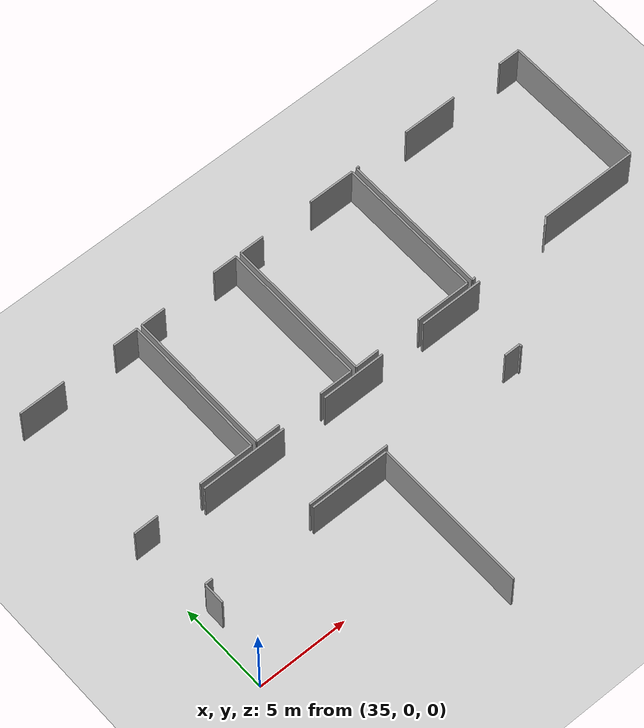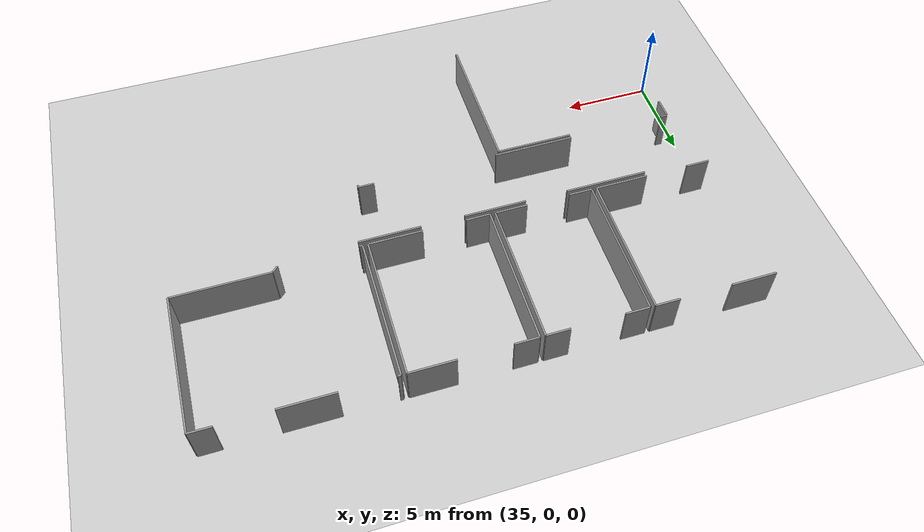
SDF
<sdf version="1.6">
 <world name="default">
  <model name="ground_plane">
   <static>1</static>
   <link name="link">
    <collision name="collision">
     <geometry><plane><normal>0 0 1</normal><size>100 100</size></plane></geometry>
     <surface><friction><ode><mu>100</mu><mu2>50</mu2></ode></friction></surface>
    </collision>
    <visual name="visual">
     <cast_shadows>0</cast_shadows>
     <geometry><plane><normal>0 0 1</normal><size>100 100</size></plane></geometry>
     <material>
      <script><uri>file://media/materials/scripts/gazebo.material</uri><name>Gazebo/Grey</name></script>
     </material>
    </visual>
   </link>
  </model>
  <model name="50041172">
   <static>1</static>
   <link name="Wall_153">
    <collision name="Wall_153_Collision">
     <geometry><box><size>4.39693880791 0.1 2.5</size></box></geometry>
     <pose>2.19846940396 0 1.25 0 0 0</pose>
    </collision>
    <visual name="Wall_153_Visual">
     <pose>2.19846940396 0 1.25 0 0 0</pose>
     <geometry><box><size>4.39693880791 0.1 2.5</size></box></geometry>
     <material>
      <script><uri>file://media/materials/scripts/gazebo.material</uri><name>Gazebo/Grey</name></script>
      <ambient>1 1 1 1</ambient>
     </material>
    </visual>
    <pose>107.543615636 -12.468578324 0 0 0 0.0</pose>
   </link>
   <link name="Wall_154">
    <collision name="Wall_154_Collision">
     <geometry><box><size>8.60347400845 0.1 2.5</size></box></geometry>
     <pose>4.30173700422 0 1.25 0 0 0</pose>
    </collision>
    <visual name="Wall_154_Visual">
     <pose>4.30173700422 0 1.25 0 0 0</pose>
     <geometry><box><size>8.60347400845 0.1 2.5</size></box></geometry>
     <material>
      <script><uri>file://media/materials/scripts/gazebo.material</uri><name>Gazebo/Grey</name></script>
      <ambient>1 1 1 1</ambient>
     </material>
    </visual>
    <pose>111.940554444 -12.468578324 0 0 0 -1.57079632679</pose>
   </link>
   <link name="Wall_269">
    <collision name="Wall_269_Collision">
     <geometry><box><size>2.56733669937 0.1 2.5</size></box></geometry>
     <pose>1.28366834969 0 1.25 0 0 0</pose>
    </collision>
    <visual name="Wall_269_Visual">
     <pose>1.28366834969 0 1.25 0 0 0</pose>
     <geometry><box><size>2.56733669937 0.1 2.5</size></box></geometry>
     <material>
      <script><uri>file://media/materials/scripts/gazebo.material</uri><name>Gazebo/Grey</name></script>
      <ambient>1 1 1 1</ambient>
     </material>
    </visual>
    <pose>100.6251945 -0.0269283287288 0 0 0 0.0</pose>
   </link>
   <link name="Wall_270">
    <collision name="Wall_270_Collision">
     <geometry><box><size>1.38820615414 0.1 2.5</size></box></geometry>
     <pose>0.69410307707 0 1.25 0 0 0</pose>
    </collision>
    <visual name="Wall_270_Visual">
     <pose>0.69410307707 0 1.25 0 0 0</pose>
     <geometry><box><size>1.38820615414 0.1 2.5</size></box></geometry>
     <material>
      <script><uri>file://media/materials/scripts/gazebo.material</uri><name>Gazebo/Grey</name></script>
      <ambient>1 1 1 1</ambient>
     </material>
    </visual>
    <pose>106.148042298 -0.0269283287288 0 0 0 0.0</pose>
   </link>
   <link name="Wall_271">
    <collision name="Wall_271_Collision">
     <geometry><box><size>8.18430662729 0.1 2.5</size></box></geometry>
     <pose>4.09215331365 0 1.25 0 0 0</pose>
    </collision>
    <visual name="Wall_271_Visual">
     <pose>4.09215331365 0 1.25 0 0 0</pose>
     <geometry><box><size>8.18430662729 0.1 2.5</size></box></geometry>
     <material>
      <script><uri>file://media/materials/scripts/gazebo.material</uri><name>Gazebo/Grey</name></script>
      <ambient>1 1 1 1</ambient>
     </material>
    </visual>
    <pose>107.536248452 -0.0269283287288 0 0 0 -1.57079632679</pose>
   </link>
   <link name="Wall_272">
    <collision name="Wall_272_Collision">
     <geometry><box><size>3.05420596361 0.1 2.5</size></box></geometry>
     <pose>1.5271029818 0 1.25 0 0 0</pose>
    </collision>
    <visual name="Wall_272_Visual">
     <pose>1.5271029818 0 1.25 0 0 0</pose>
     <geometry><box><size>3.05420596361 0.1 2.5</size></box></geometry>
     <material>
      <script><uri>file://media/materials/scripts/gazebo.material</uri><name>Gazebo/Grey</name></script>
      <ambient>1 1 1 1</ambient>
     </material>
    </visual>
    <pose>107.536248452 -8.21123495602 0 0 0 3.14159265359</pose>
   </link>
   <link name="Wall_273">
    <collision name="Wall_273_Collision">
     <geometry><box><size>1.36233677235 0.1 2.5</size></box></geometry>
     <pose>0.681168386177 0 1.25 0 0 0</pose>
    </collision>
    <visual name="Wall_273_Visual">
     <pose>0.681168386177 0 1.25 0 0 0</pose>
     <geometry><box><size>1.36233677235 0.1 2.5</size></box></geometry>
     <material>
      <script><uri>file://media/materials/scripts/gazebo.material</uri><name>Gazebo/Grey</name></script>
      <ambient>1 1 1 1</ambient>
     </material>
    </visual>
    <pose>101.987488489 -8.21123495602 0 0 0 -3.1336674116</pose>
   </link>
   <link name="Wall_274">
    <collision name="Wall_274_Collision">
     <geometry><box><size>8.19268997491 0.1 2.5</size></box></geometry>
     <pose>4.09634498746 0 1.25 0 0 0</pose>
    </collision>
    <visual name="Wall_274_Visual">
     <pose>4.09634498746 0 1.25 0 0 0</pose>
     <geometry><box><size>8.19268997491 0.1 2.5</size></box></geometry>
     <material>
      <script><uri>file://media/materials/scripts/gazebo.material</uri><name>Gazebo/Grey</name></script>
      <ambient>1 1 1 1</ambient>
     </material>
    </visual>
    <pose>107.824711822 -8.21555365025 0 0 0 1.57079632679</pose>
   </link>
   <link name="Wall_275">
    <collision name="Wall_275_Collision">
     <geometry><box><size>1.36305611127 0.1 2.5</size></box></geometry>
     <pose>0.681528055635 0 1.25 0 0 0</pose>
    </collision>
    <visual name="Wall_275_Visual">
     <pose>0.681528055635 0 1.25 0 0 0</pose>
     <geometry><box><size>1.36305611127 0.1 2.5</size></box></geometry>
     <material>
      <script><uri>file://media/materials/scripts/gazebo.material</uri><name>Gazebo/Grey</name></script>
      <ambient>1 1 1 1</ambient>
     </material>
    </visual>
    <pose>107.824711822 -0.0228636753358 0 0 0 0.0</pose>
   </link>
   <link name="Wall_276">
    <collision name="Wall_276_Collision">
     <geometry><box><size>1.36165888667 0.1 2.5</size></box></geometry>
     <pose>0.680829443333 0 1.25 0 0 0</pose>
    </collision>
    <visual name="Wall_276_Visual">
     <pose>0.680829443333 0 1.25 0 0 0</pose>
     <geometry><box><size>1.36165888667 0.1 2.5</size></box></geometry>
     <material>
      <script><uri>file://media/materials/scripts/gazebo.material</uri><name>Gazebo/Grey</name></script>
      <ambient>1 1 1 1</ambient>
     </material>
    </visual>
    <pose>112.169191197 -0.0228636753358 0 0 0 0.0</pose>
   </link>
   <link name="Wall_277">
    <collision name="Wall_277_Collision">
     <geometry><box><size>8.19586548538 0.1 2.5</size></box></geometry>
     <pose>4.09793274269 0 1.25 0 0 0</pose>
    </collision>
    <visual name="Wall_277_Visual">
     <pose>4.09793274269 0 1.25 0 0 0</pose>
     <geometry><box><size>8.19586548538 0.1 2.5</size></box></geometry>
     <material>
      <script><uri>file://media/materials/scripts/gazebo.material</uri><name>Gazebo/Grey</name></script>
      <ambient>1 1 1 1</ambient>
     </material>
    </visual>
    <pose>113.530850084 -0.0228636753358 0 0 0 -1.57079632679</pose>
   </link>
   <link name="Wall_278">
    <collision name="Wall_278_Collision">
     <geometry><box><size>1.8608491315 0.1 2.5</size></box></geometry>
     <pose>0.930424565749 0 1.25 0 0 0</pose>
    </collision>
    <visual name="Wall_278_Visual">
     <pose>0.930424565749 0 1.25 0 0 0</pose>
     <geometry><box><size>1.8608491315 0.1 2.5</size></box></geometry>
     <material>
      <script><uri>file://media/materials/scripts/gazebo.material</uri><name>Gazebo/Grey</name></script>
      <ambient>1 1 1 1</ambient>
     </material>
    </visual>
    <pose>113.530850084 -8.21872916071 0 0 0 3.14159265359</pose>
   </link>
   <link name="Wall_279">
    <collision name="Wall_279_Collision">
     <geometry><box><size>1.35048482327 0.1 2.5</size></box></geometry>
     <pose>0.675242411633 0 1.25 0 0 0</pose>
    </collision>
    <visual name="Wall_279_Visual">
     <pose>0.675242411633 0 1.25 0 0 0</pose>
     <geometry><box><size>1.35048482327 0.1 2.5</size></box></geometry>
     <material>
      <script><uri>file://media/materials/scripts/gazebo.material</uri><name>Gazebo/Grey</name></script>
      <ambient>1 1 1 1</ambient>
     </material>
    </visual>
    <pose>109.175192912 -8.21872916071 0 0 0 3.1392412659</pose>
   </link>
   <link name="Wall_280">
    <collision name="Wall_280_Collision">
     <geometry><box><size>8.20399479216 0.1 2.5</size></box></geometry>
     <pose>4.10199739608 0 1.25 0 0 0</pose>
    </collision>
    <visual name="Wall_280_Visual">
     <pose>4.10199739608 0 1.25 0 0 0</pose>
     <geometry><box><size>8.20399479216 0.1 2.5</size></box></geometry>
     <material>
      <script><uri>file://media/materials/scripts/gazebo.material</uri><name>Gazebo/Grey</name></script>
      <ambient>1 1 1 1</ambient>
     </material>
    </visual>
    <pose>113.83315868 -8.22304785494 0 0 0 1.57079632679</pose>
   </link>
   <link name="Wall_281">
    <collision name="Wall_281_Collision">
     <geometry><box><size>1.36292909085 0.1 2.5</size></box></geometry>
     <pose>0.681464545426 0 1.25 0 0 0</pose>
    </collision>
    <visual name="Wall_281_Visual">
     <pose>0.681464545426 0 1.25 0 0 0</pose>
     <geometry><box><size>1.36292909085 0.1 2.5</size></box></geometry>
     <material>
      <script><uri>file://media/materials/scripts/gazebo.material</uri><name>Gazebo/Grey</name></script>
      <ambient>1 1 1 1</ambient>
     </material>
    </visual>
    <pose>113.83315868 -0.0190530627798 0 0 0 0.0</pose>
   </link>
   <link name="Wall_282">
    <collision name="Wall_282_Collision">
     <geometry><box><size>2.58232510876 0.1 2.5</size></box></geometry>
     <pose>1.29116255438 0 1.25 0 0 0</pose>
    </collision>
    <visual name="Wall_282_Visual">
     <pose>1.29116255438 0 1.25 0 0 0</pose>
     <geometry><box><size>2.58232510876 0.1 2.5</size></box></geometry>
     <material>
      <script><uri>file://media/materials/scripts/gazebo.material</uri><name>Gazebo/Grey</name></script>
      <ambient>1 1 1 1</ambient>
     </material>
    </visual>
    <pose>118.15185291 -0.0190530627798 0 0 0 0.0</pose>
   </link>
   <link name="Wall_283">
    <collision name="Wall_283_Collision">
     <geometry><box><size>8.18938744403 0.1 2.5</size></box></geometry>
     <pose>4.09469372202 0 1.25 0 0 0</pose>
    </collision>
    <visual name="Wall_283_Visual">
     <pose>4.09469372202 0 1.25 0 0 0</pose>
     <geometry><box><size>8.18938744403 0.1 2.5</size></box></geometry>
     <material>
      <script><uri>file://media/materials/scripts/gazebo.material</uri><name>Gazebo/Grey</name></script>
      <ambient>1 1 1 1</ambient>
     </material>
    </visual>
    <pose>120.734178019 -0.0190530627798 0 0 0 -1.57079632679</pose>
   </link>
   <link name="Wall_284">
    <collision name="Wall_284_Collision">
     <geometry><box><size>3.05103045315 0.1 2.5</size></box></geometry>
     <pose>1.52551522657 0 1.25 0 0 0</pose>
    </collision>
    <visual name="Wall_284_Visual">
     <pose>1.52551522657 0 1.25 0 0 0</pose>
     <geometry><box><size>3.05103045315 0.1 2.5</size></box></geometry>
     <material>
      <script><uri>file://media/materials/scripts/gazebo.material</uri><name>Gazebo/Grey</name></script>
      <ambient>1 1 1 1</ambient>
     </material>
    </visual>
    <pose>120.734178019 -8.20844050681 0 0 0 3.14159265359</pose>
   </link>
   <link name="Wall_285">
    <collision name="Wall_285_Collision">
     <geometry><box><size>1.36681776089 0.1 2.5</size></box></geometry>
     <pose>0.683408880446 0 1.25 0 0 0</pose>
    </collision>
    <visual name="Wall_285_Visual">
     <pose>0.683408880446 0 1.25 0 0 0</pose>
     <geometry><box><size>1.36681776089 0.1 2.5</size></box></geometry>
     <material>
      <script><uri>file://media/materials/scripts/gazebo.material</uri><name>Gazebo/Grey</name></script>
      <ambient>1 1 1 1</ambient>
     </material>
    </visual>
    <pose>115.199898384 -8.20844050681 0 0 0 -3.13090532816</pose>
   </link>
   <link name="Wall_286">
    <collision name="Wall_286_Collision">
     <geometry><box><size>8.20894858849 0.1 2.5</size></box></geometry>
     <pose>4.10447429424 0 1.25 0 0 0</pose>
    </collision>
    <visual name="Wall_286_Visual">
     <pose>4.10447429424 0 1.25 0 0 0</pose>
     <geometry><box><size>8.20894858849 0.1 2.5</size></box></geometry>
     <material>
      <script><uri>file://media/materials/scripts/gazebo.material</uri><name>Gazebo/Grey</name></script>
      <ambient>1 1 1 1</ambient>
     </material>
    </visual>
    <pose>121.027595186 -8.22038042615 0 0 0 1.57079632679</pose>
   </link>
   <link name="Wall_287">
    <collision name="Wall_287_Collision">
     <geometry><box><size>0.166396748277 0.1 2.5</size></box></geometry>
     <pose>0.0831983741386 0 1.25 0 0 0</pose>
    </collision>
    <visual name="Wall_287_Visual">
     <pose>0.0831983741386 0 1.25 0 0 0</pose>
     <geometry><box><size>0.166396748277 0.1 2.5</size></box></geometry>
     <material>
      <script><uri>file://media/materials/scripts/gazebo.material</uri><name>Gazebo/Grey</name></script>
      <ambient>1 1 1 1</ambient>
     </material>
    </visual>
    <pose>121.027595186 -0.0114318376679 0 0 0 0.0</pose>
   </link>
   <link name="Wall_288">
    <collision name="Wall_288_Collision">
     <geometry><box><size>3.06627290337 0.1 2.5</size></box></geometry>
     <pose>1.53313645168 0 1.25 0 0 0</pose>
    </collision>
    <visual name="Wall_288_Visual">
     <pose>1.53313645168 0 1.25 0 0 0</pose>
     <geometry><box><size>3.06627290337 0.1 2.5</size></box></geometry>
     <material>
      <script><uri>file://media/materials/scripts/gazebo.material</uri><name>Gazebo/Grey</name></script>
      <ambient>1 1 1 1</ambient>
     </material>
    </visual>
    <pose>124.153567686 -0.0114318376679 0 0 0 0.0</pose>
   </link>
   <link name="Wall_289">
    <collision name="Wall_289_Collision">
     <geometry><box><size>1.2460703058 0.1 2.5</size></box></geometry>
     <pose>0.623035152901 0 1.25 0 0 0</pose>
    </collision>
    <visual name="Wall_289_Visual">
     <pose>0.623035152901 0 1.25 0 0 0</pose>
     <geometry><box><size>1.2460703058 0.1 2.5</size></box></geometry>
     <material>
      <script><uri>file://media/materials/scripts/gazebo.material</uri><name>Gazebo/Grey</name></script>
      <ambient>1 1 1 1</ambient>
     </material>
    </visual>
    <pose>130.175605729 -0.0114318376679 0 0 0 0.0</pose>
   </link>
   <link name="Wall_290">
    <collision name="Wall_290_Collision">
     <geometry><box><size>7.89660537931 0.1 2.5</size></box></geometry>
     <pose>3.94830268966 0 1.25 0 0 0</pose>
    </collision>
    <visual name="Wall_290_Visual">
     <pose>3.94830268966 0 1.25 0 0 0</pose>
     <geometry><box><size>7.89660537931 0.1 2.5</size></box></geometry>
     <material>
      <script><uri>file://media/materials/scripts/gazebo.material</uri><name>Gazebo/Grey</name></script>
      <ambient>1 1 1 1</ambient>
     </material>
    </visual>
    <pose>131.421676034 -0.0114318376679 0 0 0 -1.57079632679</pose>
   </link>
   <link name="Wall_291">
    <collision name="Wall_291_Collision">
     <geometry><box><size>5.45806738433 0.1 2.5</size></box></geometry>
     <pose>2.72903369217 0 1.25 0 0 0</pose>
    </collision>
    <visual name="Wall_291_Visual">
     <pose>2.72903369217 0 1.25 0 0 0</pose>
     <geometry><box><size>5.45806738433 0.1 2.5</size></box></geometry>
     <material>
      <script><uri>file://media/materials/scripts/gazebo.material</uri><name>Gazebo/Grey</name></script>
      <ambient>1 1 1 1</ambient>
     </material>
    </visual>
    <pose>131.421676034 -7.90803721698 0 0 0 3.14159265359</pose>
   </link>
   <link name="Wall_292">
    <collision name="Wall_292_Collision">
     <geometry><box><size>0.435285927372 0.1 2.5</size></box></geometry>
     <pose>0.217642963686 0 1.25 0 0 0</pose>
    </collision>
    <visual name="Wall_292_Visual">
     <pose>0.217642963686 0 1.25 0 0 0</pose>
     <geometry><box><size>0.435285927372 0.1 2.5</size></box></geometry>
     <material>
      <script><uri>file://media/materials/scripts/gazebo.material</uri><name>Gazebo/Grey</name></script>
      <ambient>1 1 1 1</ambient>
     </material>
    </visual>
    <pose>125.96360865 -7.90803721698 0 0 0 -2.37992584432</pose>
   </link>
   <link name="Wall_293">
    <collision name="Wall_293_Collision">
     <geometry><box><size>0.185833780823 0.1 2.5</size></box></geometry>
     <pose>0.0929168904116 0 1.25 0 0 0</pose>
    </collision>
    <visual name="Wall_293_Visual">
     <pose>0.0929168904116 0 1.25 0 0 0</pose>
     <geometry><box><size>0.185833780823 0.1 2.5</size></box></geometry>
     <material>
      <script><uri>file://media/materials/scripts/gazebo.material</uri><name>Gazebo/Grey</name></script>
      <ambient>1 1 1 1</ambient>
     </material>
    </visual>
    <pose>121.213044997 -8.20844050681 0 0 0 -3.07729783317</pose>
   </link>
   <link name="Wall_326">
    <collision name="Wall_326_Collision">
     <geometry><box><size>1.1439458893 0.1 2.5</size></box></geometry>
     <pose>0.571972944651 0 1.25 0 0 0</pose>
    </collision>
    <visual name="Wall_326_Visual">
     <pose>0.571972944651 0 1.25 0 0 0</pose>
     <geometry><box><size>1.1439458893 0.1 2.5</size></box></geometry>
     <material>
      <script><uri>file://media/materials/scripts/gazebo.material</uri><name>Gazebo/Grey</name></script>
      <ambient>1 1 1 1</ambient>
     </material>
    </visual>
    <pose>101.395319298 -12.3075164333 0 0 0 -1.57079632679</pose>
   </link>
   <link name="Wall_333">
    <collision name="Wall_333_Collision">
     <geometry><box><size>4.74497475469 0.1 2.5</size></box></geometry>
     <pose>2.37248737735 0 1.25 0 0 0</pose>
    </collision>
    <visual name="Wall_333_Visual">
     <pose>2.37248737735 0 1.25 0 0 0</pose>
     <geometry><box><size>4.74497475469 0.1 2.5</size></box></geometry>
     <material>
      <script><uri>file://media/materials/scripts/gazebo.material</uri><name>Gazebo/Grey</name></script>
      <ambient>1 1 1 1</ambient>
     </material>
    </visual>
    <pose>104.466673018 -8.50757359245 0 0 0 0.0</pose>
   </link>
   <link name="Wall_334">
    <collision name="Wall_334_Collision">
     <geometry><box><size>3.54768028961 0.1 2.5</size></box></geometry>
     <pose>1.7738401448 0 1.25 0 0 0</pose>
    </collision>
    <visual name="Wall_334_Visual">
     <pose>1.7738401448 0 1.25 0 0 0</pose>
     <geometry><box><size>3.54768028961 0.1 2.5</size></box></geometry>
     <material>
      <script><uri>file://media/materials/scripts/gazebo.material</uri><name>Gazebo/Grey</name></script>
      <ambient>1 1 1 1</ambient>
     </material>
    </visual>
    <pose>111.656028707 -8.50757359245 0 0 0 0.0</pose>
   </link>
   <link name="Wall_335">
    <collision name="Wall_335_Collision">
     <geometry><box><size>3.53243783938 0.1 2.5</size></box></geometry>
     <pose>1.76621891969 0 1.25 0 0 0</pose>
    </collision>
    <visual name="Wall_335_Visual">
     <pose>1.76621891969 0 1.25 0 0 0</pose>
     <geometry><box><size>3.53243783938 0.1 2.5</size></box></geometry>
     <material>
      <script><uri>file://media/materials/scripts/gazebo.material</uri><name>Gazebo/Grey</name></script>
      <ambient>1 1 1 1</ambient>
     </material>
    </visual>
    <pose>117.686958179 -8.50757359245 0 0 0 0.0</pose>
   </link>
   <link name="Wall_336">
    <collision name="Wall_336_Collision">
     <geometry><box><size>0.144803277127 0.1 2.5</size></box></geometry>
     <pose>0.0724016385634 0 1.25 0 0 0</pose>
    </collision>
    <visual name="Wall_336_Visual">
     <pose>0.0724016385634 0 1.25 0 0 0</pose>
     <geometry><box><size>0.144803277127 0.1 2.5</size></box></geometry>
     <material>
      <script><uri>file://media/materials/scripts/gazebo.material</uri><name>Gazebo/Grey</name></script>
      <ambient>1 1 1 1</ambient>
     </material>
    </visual>
    <pose>120.334063701 -12.3959226446 0 0 0 1.57079632679</pose>
   </link>
   <link name="Wall_337">
    <collision name="Wall_337_Collision">
     <geometry><box><size>0.912006605062 0.1 2.5</size></box></geometry>
     <pose>0.456003302531 0 1.25 0 0 0</pose>
    </collision>
    <visual name="Wall_337_Visual">
     <pose>0.456003302531 0 1.25 0 0 0</pose>
     <geometry><box><size>0.912006605062 0.1 2.5</size></box></geometry>
     <material>
      <script><uri>file://media/materials/scripts/gazebo.material</uri><name>Gazebo/Grey</name></script>
      <ambient>1 1 1 1</ambient>
     </material>
    </visual>
    <pose>120.334063701 -12.2511193674 0 0 0 3.14159265359</pose>
   </link>
   <link name="Wall_338">
    <collision name="Wall_338_Collision">
     <geometry><box><size>4.66126829888 0.1 2.5</size></box></geometry>
     <pose>2.33063414944 0 1.25 0 0 0</pose>
    </collision>
    <visual name="Wall_338_Visual">
     <pose>2.33063414944 0 1.25 0 0 0</pose>
     <geometry><box><size>4.66126829888 0.1 2.5</size></box></geometry>
     <material>
      <script><uri>file://media/materials/scripts/gazebo.material</uri><name>Gazebo/Grey</name></script>
      <ambient>1 1 1 1</ambient>
     </material>
    </visual>
    <pose>112.198405894 -12.2511193674 0 0 0 3.14159265359</pose>
   </link>
   <link name="Wall_339">
    <collision name="Wall_339_Collision">
     <geometry><box><size>0.405703216792 0.1 2.5</size></box></geometry>
     <pose>0.202851608396 0 1.25 0 0 0</pose>
    </collision>
    <visual name="Wall_339_Visual">
     <pose>0.202851608396 0 1.25 0 0 0</pose>
     <geometry><box><size>0.405703216792 0.1 2.5</size></box></geometry>
     <material>
      <script><uri>file://media/materials/scripts/gazebo.material</uri><name>Gazebo/Grey</name></script>
      <ambient>1 1 1 1</ambient>
     </material>
    </visual>
    <pose>101.806357372 -12.2511193674 0 0 0 3.14159265359</pose>
   </link>
   <pose>-65.7 16.7659077197 0 0 0 0</pose>
  </model>
 </world>
</sdf>
